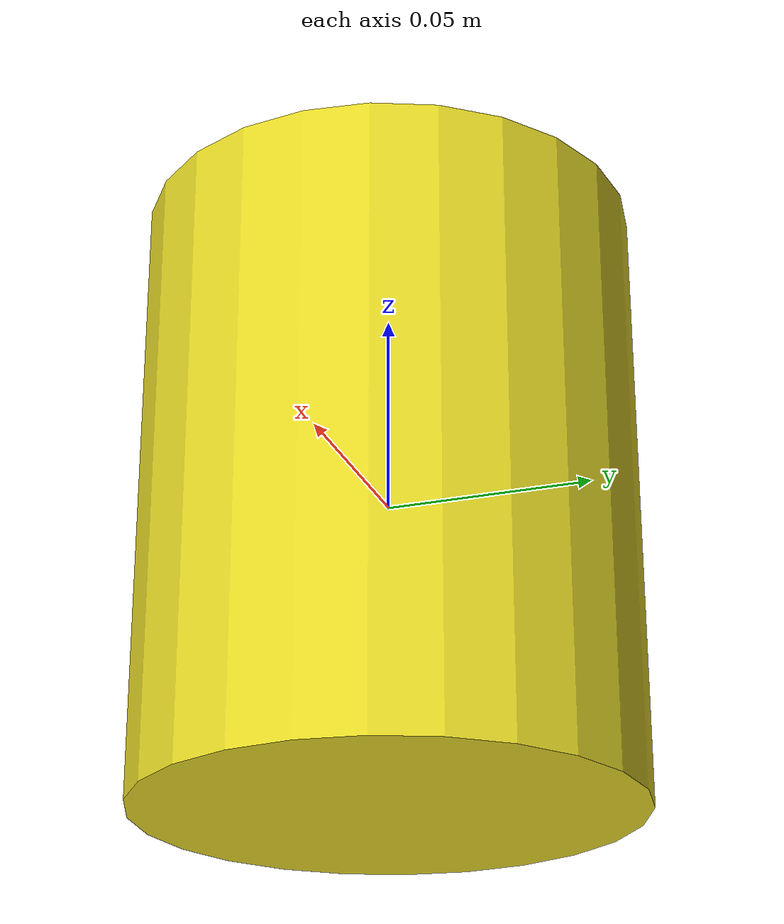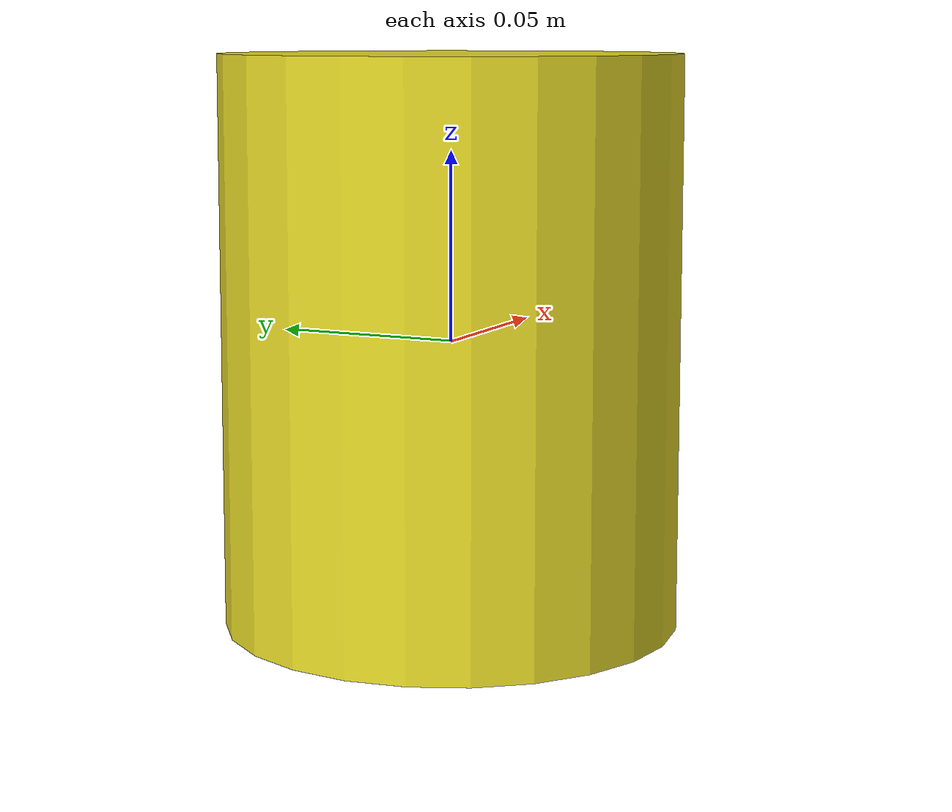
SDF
<?xml version='1.0'?>
<sdf version='1.5'>
  <model name='f450-trap'>
    <link name='link_0'>
      <pose frame=''>0 0 0 0 -0 0</pose>
      <gravity>1</gravity>
      <self_collide>0</self_collide>
      <kinematic>0</kinematic>
      <inertial>
        <mass>0.1</mass>
        <pose frame=''>0 0 0 0 -0 0</pose>
        <inertia>
          <ixx>0.01</ixx>
          <ixy>0</ixy>
          <ixz>0</ixz>
          <iyy>0.01</iyy>
          <iyz>0</iyz>
          <izz>0.01</izz>
        </inertia>
      </inertial>
      <visual name='visual'>
        <pose frame=''>0 0 0 0 -0 0</pose>
        <geometry>
          <cylinder>
            <radius>0.06</radius>
            <length>0.15</length>
          </cylinder>
        </geometry>
        <material>
          <lighting>1</lighting>
          <script>
            <uri>file://media/materials/scripts/gazebo.material</uri>
            <name>Gazebo/Yellow</name>
          </script>
          <ambient>0.3 0.3 0.3 1</ambient>
          <diffuse>0.7 0.7 0.7 1</diffuse>
          <specular>0.01 0.01 0.01 1</specular>
          <emissive>0 0 0 1</emissive>
          <shader type='vertex'>
            <normal_map>__default__</normal_map>
          </shader>
        </material>
        <cast_shadows>1</cast_shadows>
        <transparency>0</transparency>
      </visual>
      <collision name='collision'>
        <laser_retro>0</laser_retro>
        <max_contacts>10</max_contacts>
        <pose frame=''>0 0 0 0 -0 0</pose>
        <geometry>
          <cylinder>
            <radius>0.078795</radius>
            <length>0.201275</length>
          </cylinder>
        </geometry>
        <surface>
          <friction>
            <ode>
              <mu>1</mu>
              <mu2>1</mu2>
              <fdir1>0 0 0</fdir1>
              <slip1>0</slip1>
              <slip2>0</slip2>
            </ode>
          </friction>
          <bounce>
            <restitution_coefficient>0</restitution_coefficient>
            <threshold>1e+06</threshold>
          </bounce>
          <contact>
            <collide_without_contact>0</collide_without_contact>
            <collide_without_contact_bitmask>1</collide_without_contact_bitmask>
            <collide_bitmask>1</collide_bitmask>
            <ode>
              <soft_cfm>0</soft_cfm>
              <soft_erp>0.2</soft_erp>
              <kp>1e+13</kp>
              <kd>1</kd>
              <max_vel>0.01</max_vel>
              <min_depth>0</min_depth>
            </ode>
            <bullet>
              <split_impulse>1</split_impulse>
              <split_impulse_penetration_threshold>-0.01</split_impulse_penetration_threshold>
              <soft_cfm>0</soft_cfm>
              <soft_erp>0.2</soft_erp>
              <kp>1e+13</kp>
              <kd>1</kd>
            </bullet>
          </contact>
        </surface>
      </collision>
    </link>
    <static>0</static>
    <allow_auto_disable>1</allow_auto_disable>
  </model>
</sdf>
